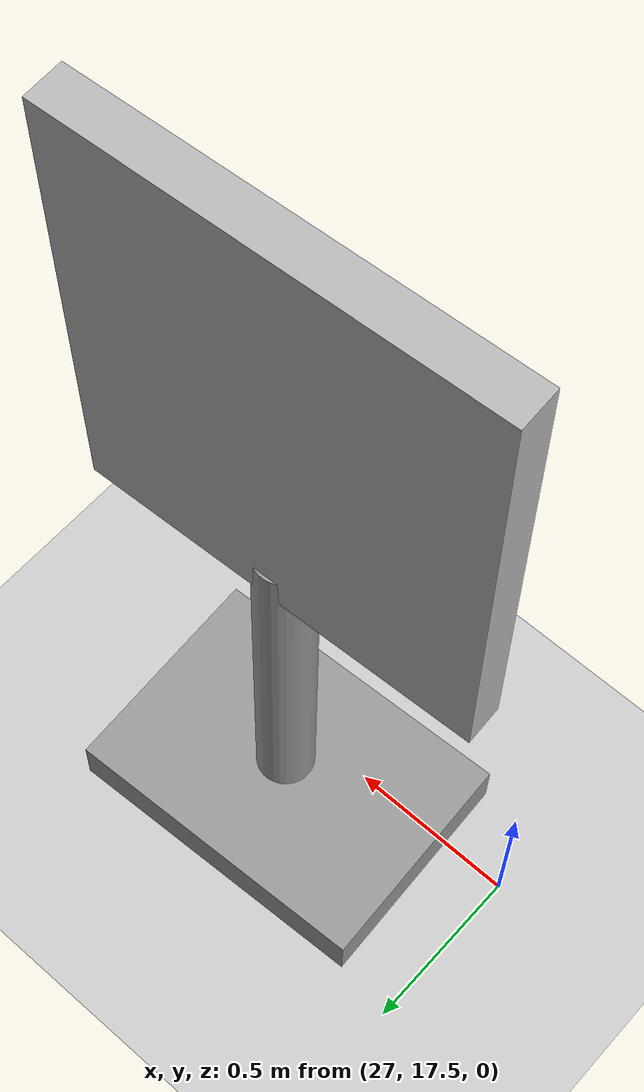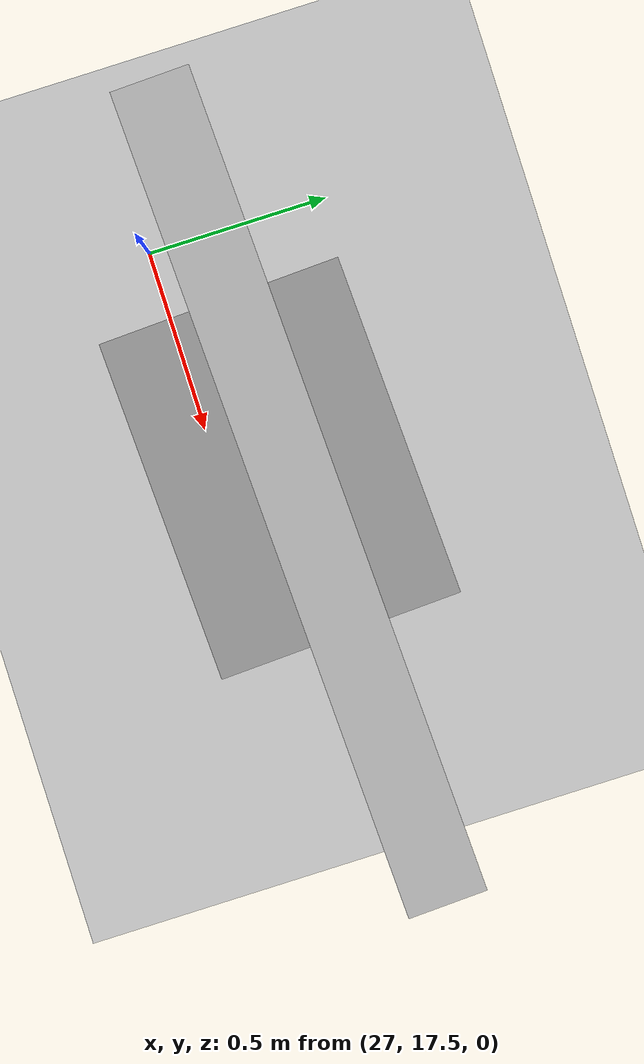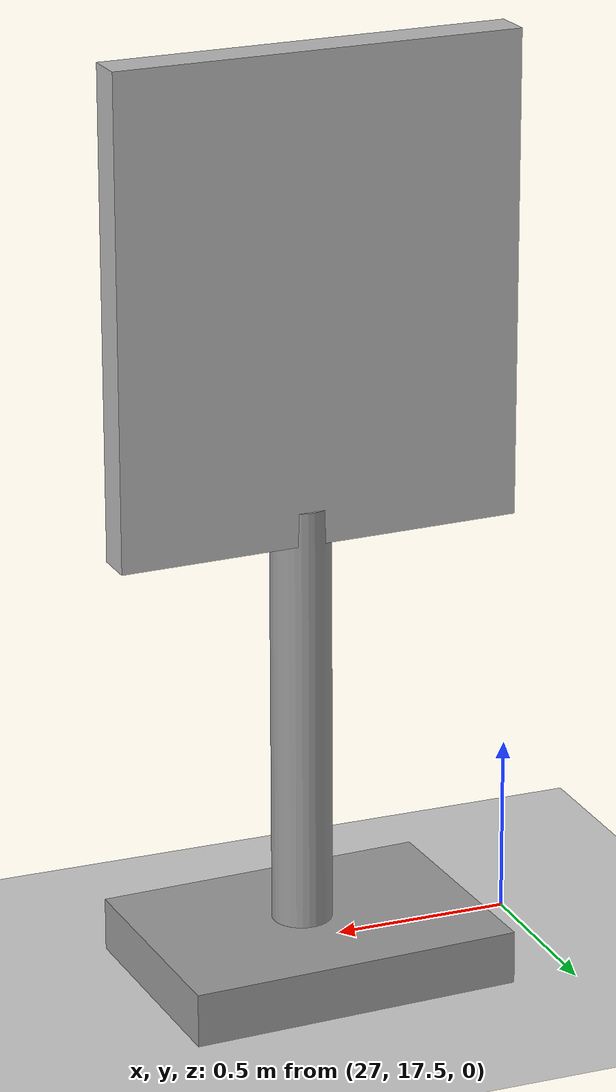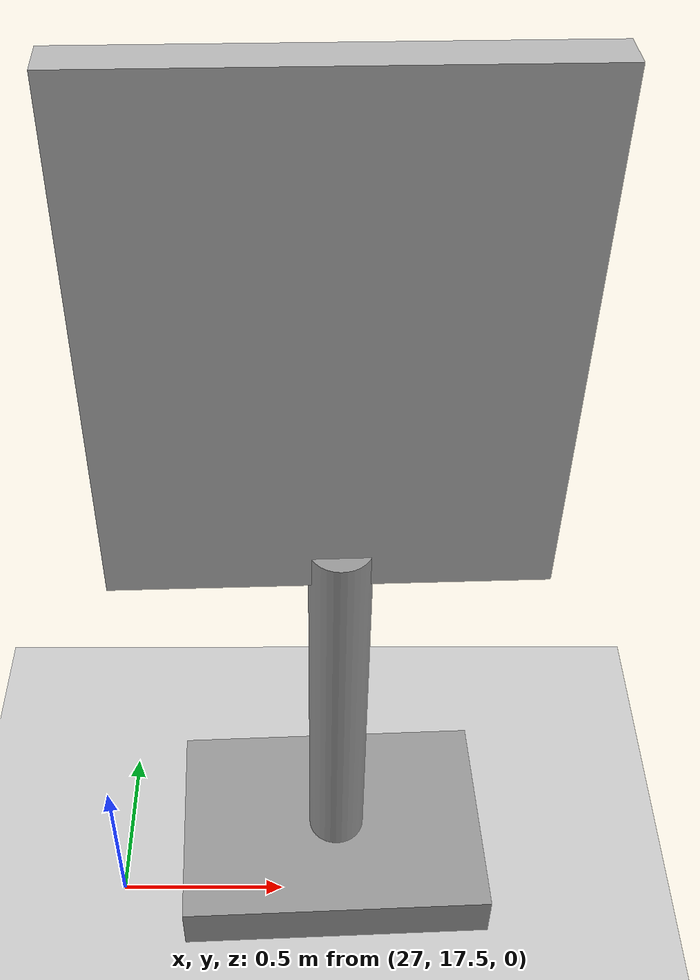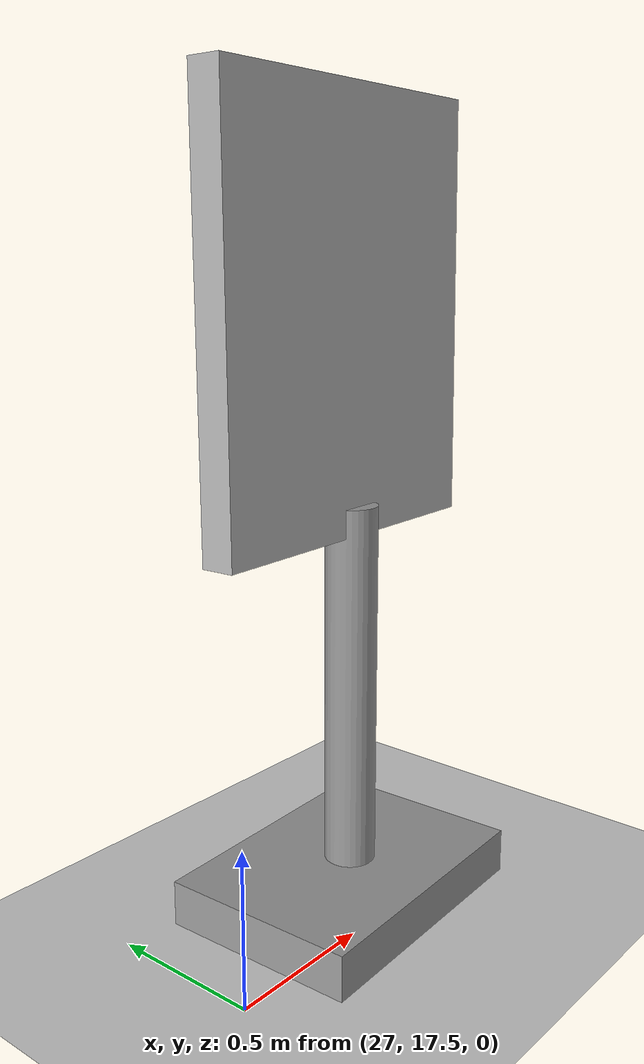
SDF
<sdf version="1.7">
 <world name="default">
  <model name="ground_plane">
   <static>1</static>
   <link name="link">
    <collision name="collision">
     <geometry><plane><normal>0 0 1</normal><size>100 100</size></plane></geometry>
     <surface>
      <contact><collide_bitmask>65535</collide_bitmask></contact>
      <friction><ode><mu>100</mu><mu2>50</mu2></ode></friction>
     </surface>
    </collision>
    <visual name="visual">
     <cast_shadows>0</cast_shadows>
     <geometry><plane><normal>0 0 1</normal><size>100 100</size></plane></geometry>
     <material>
      <script><uri>file://media/materials/scripts/gazebo.material</uri><name>Gazebo/Grey</name></script>
     </material>
    </visual>
   </link>
  </model>
  <model name="Sign_board_stand_3">
   <link name="link_0">
    <inertial>
     <mass>1</mass>
     <inertia>
      <ixx>0.166667</ixx>
      <ixy>0</ixy>
      <ixz>0</ixz>
      <iyy>0.166667</iyy>
      <iyz>0</iyz>
      <izz>0.166667</izz>
     </inertia>
    </inertial>
    <pose>0.012693 -0.016329 -0.964065 1.57085 0.003717 1.58448</pose>
    <visual name="visual">
     <geometry><mesh><uri>model://sign_board_60/meshes/sign_stand.obj</uri><scale>1 1 1</scale></mesh></geometry>
     <material>
      <lighting>1</lighting>
      <script><uri>file://media/materials/scripts/gazebo.material</uri><name>Gazebo/Grey</name></script>
      <shader type="pixel"/>
      <emissive>0 0 0 1</emissive>
     </material>
    </visual>
    <collision name="collision">
     <geometry><mesh><uri>model://sign_board_60/meshes/sign_stand.obj</uri><scale>1 1 1</scale></mesh></geometry>
     <surface>
      <friction>
       <ode><mu>1</mu><mu2>1</mu2><fdir1>0 0 0</fdir1><slip1>0</slip1><slip2>0</slip2></ode>
       <torsional>
        <coefficient>1</coefficient>
        <patch_radius>0</patch_radius>
        <surface_radius>0</surface_radius>
        <use_patch_radius>1</use_patch_radius>
        <ode><slip>0</slip></ode>
       </torsional>
      </friction>
      <bounce><restitution_coefficient>0</restitution_coefficient><threshold>1e+06</threshold></bounce>
      <contact>
       <collide_without_contact>0</collide_without_contact>
       <collide_without_contact_bitmask>1</collide_without_contact_bitmask>
       <collide_bitmask>1</collide_bitmask>
       <ode>
        <soft_cfm>0</soft_cfm>
        <soft_erp>0.2</soft_erp>
        <kp>1e+13</kp>
        <kd>1</kd>
        <max_vel>0.01</max_vel>
        <min_depth>0</min_depth>
       </ode>
       <bullet>
        <split_impulse>1</split_impulse>
        <split_impulse_penetration_threshold>-0.01</split_impulse_penetration_threshold>
        <soft_cfm>0</soft_cfm>
        <soft_erp>0.2</soft_erp>
        <kp>1e+13</kp>
        <kd>1</kd>
       </bullet>
      </contact>
     </surface>
    </collision>
   </link>
   <link name="link_1">
    <inertial>
     <mass>1</mass>
     <inertia>
      <ixx>0.166667</ixx>
      <ixy>0</ixy>
      <ixz>0</ixz>
      <iyy>0.166667</iyy>
      <iyz>0</iyz>
      <izz>0.166667</izz>
     </inertia>
    </inertial>
    <pose>-0.012694 0.016329 0.964067 3.14159 1.56059 3.14159</pose>
    <visual name="visual">
     <geometry><mesh><uri>model://sign_board_60/meshes/sign_board.obj</uri><scale>1 1 1</scale></mesh></geometry>
     <material>
      <script>
       <uri>model://sign_board_60/materials/scripts</uri>
       <uri>model://sign_board_60/materials/textures</uri>
       <name>sign_board_60/Diffuse</name>
      </script>
     </material>
    </visual>
    <collision name="collision">
     <geometry><mesh><uri>model://sign_board_60/meshes/sign_board.obj</uri><scale>1 1 1</scale></mesh></geometry>
     <surface>
      <friction>
       <ode><mu>1</mu><mu2>1</mu2><fdir1>0 0 0</fdir1><slip1>0</slip1><slip2>0</slip2></ode>
       <torsional>
        <coefficient>1</coefficient>
        <patch_radius>0</patch_radius>
        <surface_radius>0</surface_radius>
        <use_patch_radius>1</use_patch_radius>
        <ode><slip>0</slip></ode>
       </torsional>
      </friction>
      <bounce><restitution_coefficient>0</restitution_coefficient><threshold>1e+06</threshold></bounce>
      <contact>
       <collide_without_contact>0</collide_without_contact>
       <collide_without_contact_bitmask>1</collide_without_contact_bitmask>
       <collide_bitmask>1</collide_bitmask>
       <ode>
        <soft_cfm>0</soft_cfm>
        <soft_erp>0.2</soft_erp>
        <kp>1e+13</kp>
        <kd>1</kd>
        <max_vel>0.01</max_vel>
        <min_depth>0</min_depth>
       </ode>
       <bullet>
        <split_impulse>1</split_impulse>
        <split_impulse_penetration_threshold>-0.01</split_impulse_penetration_threshold>
        <soft_cfm>0</soft_cfm>
        <soft_erp>0.2</soft_erp>
        <kp>1e+13</kp>
        <kd>1</kd>
       </bullet>
      </contact>
     </surface>
    </collision>
   </link>
   <joint name="stand_board_J" type="fixed">
    <parent>link_0</parent>
    <child>link_1</child>
    <physics>
     <ode><limit><cfm>0</cfm><erp>0.2</erp></limit><suspension><cfm>0</cfm><erp>0.2</erp></suspension></ode>
    </physics>
   </joint>
   <static>0</static>
   <pose>27.6595 17.6396 0.964119 0.003717 -3e-06 1.60241</pose>
  </model>
 </world>
</sdf>
